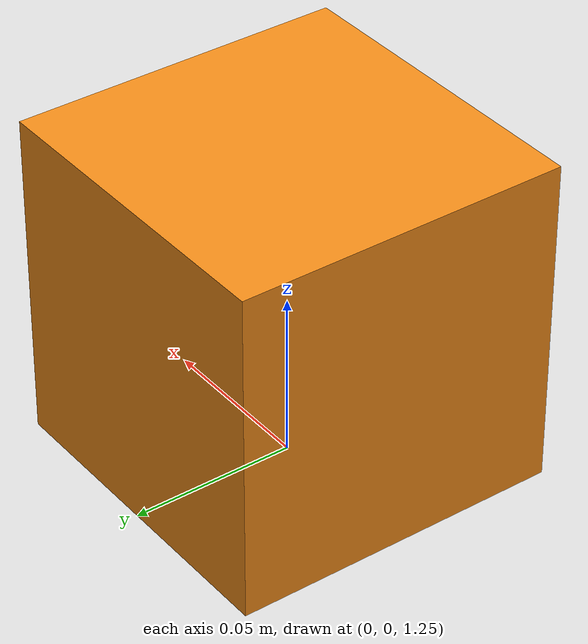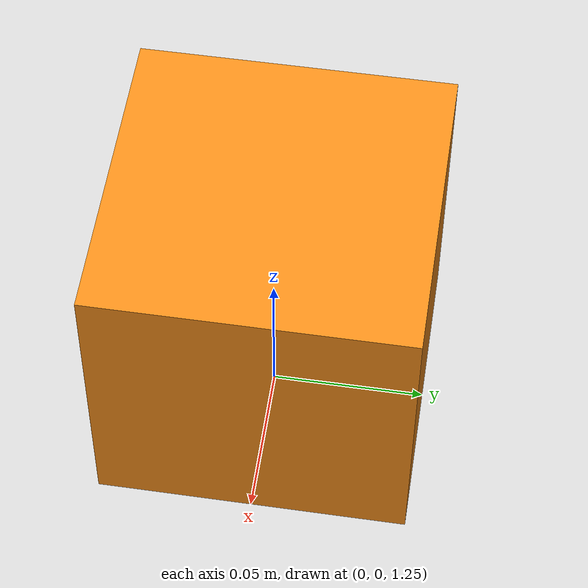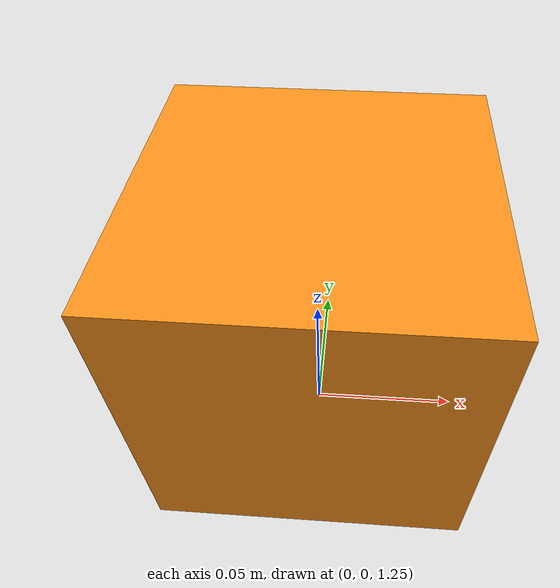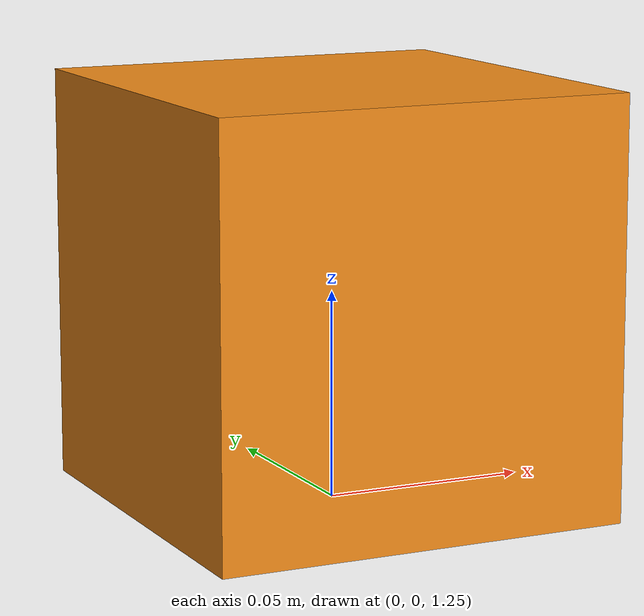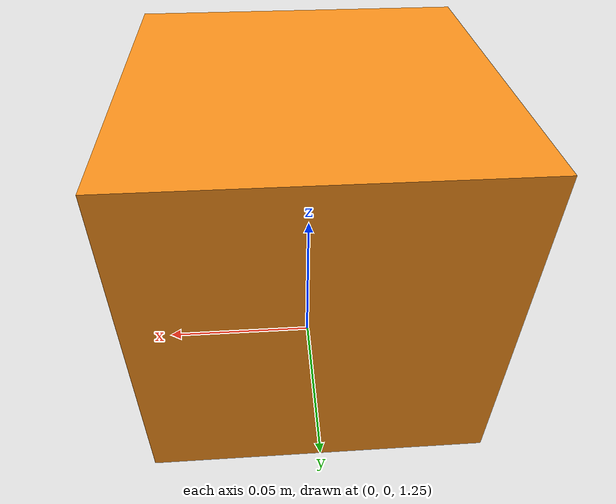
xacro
<?xml version="1.0"?>
<!-- Revolute-Revolute Manipulator -->
<robot name="workstation" xmlns:xacro="http://www.ros.org/wiki/xacro">

  <xacro:include filename="$(find workstation_description)/urdf/workstation.gazebo" />
  <!-- for gazebo -->
  <link name="world"/>

  <joint name="camera_joint" type="fixed">
    <parent link="world"/>
    <child link="camera_link"/>
    <origin xyz="0 0 1.3" rpy="0 1.57079633 0"/>
  </joint>

  <link name="camera_link">
    <collision>
      <geometry>
	<box size="0 0 0"/>
      </geometry>
    </collision>

    <visual>
      <geometry>
	<box size="0.1 0.1 0.1"/>
      </geometry>
      <material name="orange"/>
    </visual>

    <inertial>
      <mass value="1" />
      <origin xyz="0 0 0" rpy="0 0 0"/>
      <inertia ixx="1e-6" ixy="0" ixz="0" iyy="1e-6" iyz="0" izz="1e-6" />
    </inertial>
  </link>

</robot>
